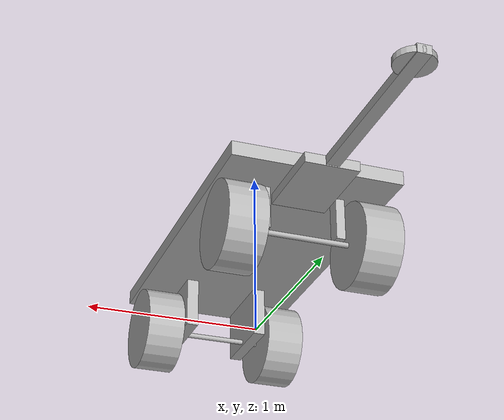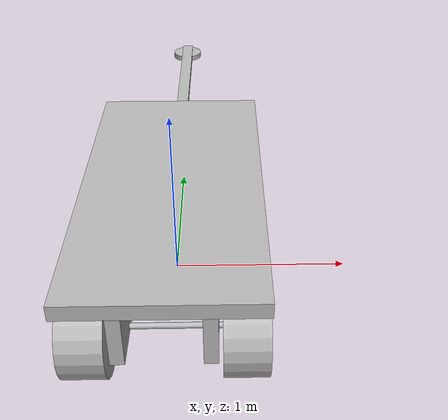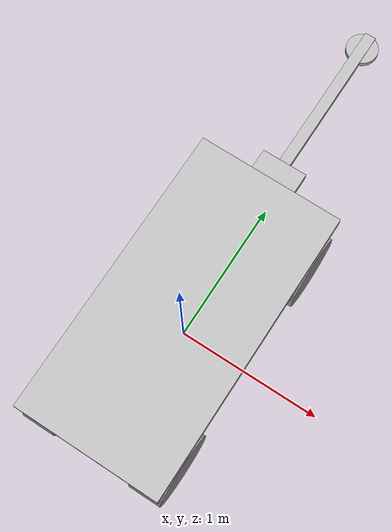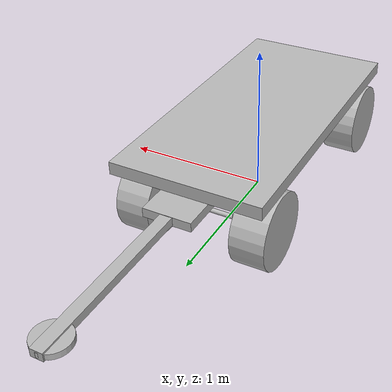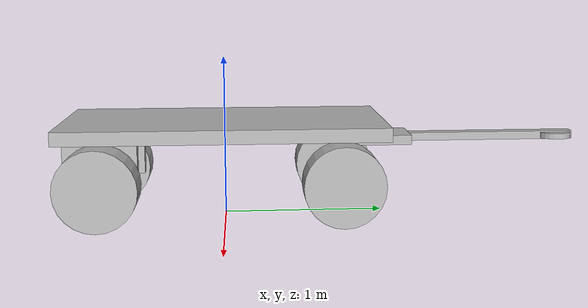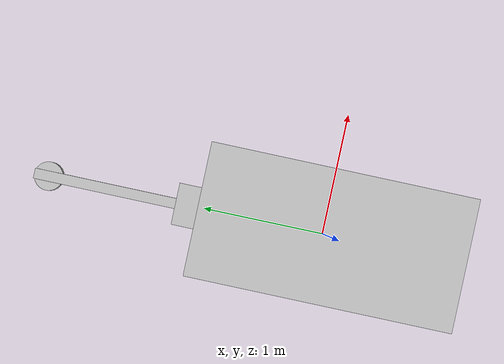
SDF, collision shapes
<?xml version="1.0" ?>
<sdf version="1.6">
  <model name="Hand_Cart">
    <link name="base_link">
      <visual name="base_visual">
        <geometry>
          <mesh>
            <uri>base_visual.glb</uri>
          </mesh>
        </geometry>
      </visual>
      <collision name="cart031_collider_cylinder">
        <pose>-0.389062 -0.75487 0.25 0.0 1.570796 0.0</pose>
        <geometry>
          <cylinder>
            <radius>0.25</radius>
            <length>0.225243</length>
          </cylinder>
        </geometry>
      </collision>
      <collision name="cart029_collider_cylinder">
        <pose>0.387379 -0.75487 0.25 0.0 1.570796 0.0</pose>
        <geometry>
          <cylinder>
            <radius>0.25</radius>
            <length>0.225242</length>
          </cylinder>
        </geometry>
      </collision>
      <collision name="cart030_collider_cylinder">
        <pose>0.389062 0.722429 0.25 0.0 1.570796 0.0</pose>
        <geometry>
          <cylinder>
            <radius>0.25</radius>
            <length>0.225243</length>
          </cylinder>
        </geometry>
      </collision>
      <collision name="cart029_collider_cylinder.001">
        <pose>-0.387379 0.72243 0.25 0.0 1.570796 0.0</pose>
        <geometry>
          <cylinder>
            <radius>0.25</radius>
            <length>0.225242</length>
          </cylinder>
        </geometry>
      </collision>
      <collision name="cart029_collider_box">
        <pose>0.0 0.0 0.567911 -0.0 -0.0 -0.0</pose>
        <geometry>
          <box>
            <size>1.0 2.0 0.084664</size>
          </box>
        </geometry>
      </collision>
      <collision name="cart029_collider_box.001">
        <pose>-0.219649 -0.753798 0.409806 -0.0 -0.0 -0.0</pose>
        <geometry>
          <box>
            <size>0.071417 0.449821 0.371456</size>
          </box>
        </geometry>
      </collision>
      <collision name="cart029_collider_box.002">
        <pose>0.219648 -0.753798 0.409806 -0.0 -0.0 -0.0</pose>
        <geometry>
          <box>
            <size>0.071417 0.449821 0.371456</size>
          </box>
        </geometry>
      </collision>
      <collision name="cart029_collider_cylinder.002">
        <pose>-0.0 -0.753188 0.25 0.0 1.570796 0.0</pose>
        <geometry>
          <cylinder>
            <radius>0.0154</radius>
            <length>0.936852</length>
          </cylinder>
        </geometry>
      </collision>
      <collision name="cart029_collider_box.003">
        <pose>-0.219648 0.722429 0.386354 -0.0 -0.0 -0.0</pose>
        <geometry>
          <box>
            <size>0.052427 0.081425 0.246141</size>
          </box>
        </geometry>
      </collision>
      <collision name="cart029_collider_box.004">
        <pose>0.219649 0.722429 0.386354 -0.0 -0.0 -0.0</pose>
        <geometry>
          <box>
            <size>0.052427 0.081425 0.246141</size>
          </box>
        </geometry>
      </collision>
      <collision name="cart029_collider_cylinder.003">
        <pose>0.0 0.722429 0.25 0.0 1.570796 0.0</pose>
        <geometry>
          <cylinder>
            <radius>0.0154</radius>
            <length>0.936852</length>
          </cylinder>
        </geometry>
      </collision>
      <collision name="cart029_collider_box.005">
        <pose>0.0 0.932329 0.479425 -0.0 -0.0 -0.0</pose>
        <geometry>
          <box>
            <size>0.314733 0.488329 0.06</size>
          </box>
        </geometry>
      </collision>
      <collision name="cart030_collider_box">
        <pose>1e-06 1.713832 0.481015 -0.0 -0.0 -0.0</pose>
        <geometry>
          <box>
            <size>0.07719 1.074678 0.051484</size>
          </box>
        </geometry>
      </collision>
      <collision name="cart029_collider_cylinder.004">
        <pose>1e-06 2.144492 0.47925 -0.0 -0.0 -0.0</pose>
        <geometry>
          <cylinder>
            <radius>0.107846</radius>
            <length>0.035993</length>
          </cylinder>
        </geometry>
      </collision>
    </link>
  </model>
</sdf>
